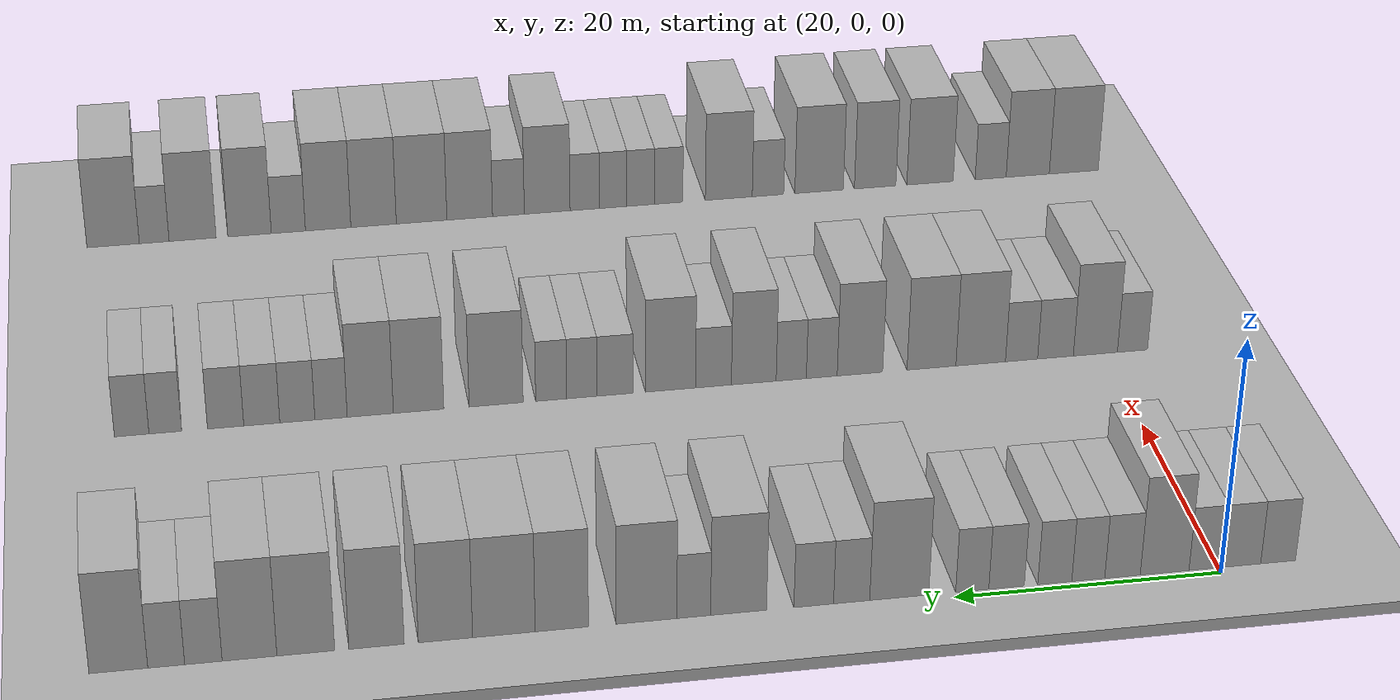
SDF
<sdf version="1.6">
 <world name="default">
  <include><name>ground_plane_1</name><uri>model://HANNAS_ground_plane</uri></include>
  <include>
   <name>ground_plane_2</name>
   <uri>model://HANNAS_ground_plane</uri>
   <pose>100 0 0  0 0 0</pose>
  </include>
  <model name="building_71">
   <static>1</static>
   <pose>25.0000 -4.2784 0 0.000000 0.000000 0.000000</pose>
   <link name="link">
    <pose>0 0 3.00 0 0 0</pose>
    <collision name="collision"><geometry><box><size>10.0000 2.6548 6.0000</size></box></geometry></collision>
    <visual name="visual">
     <cast_shadows>0</cast_shadows>
     <geometry><box><size>10.0000 2.6548 6.0000</size></box></geometry>
     <material>
      <script>
       <uri>model://HANNAS_wall/materials/scripts</uri>
       <uri>model://HANNAS_wall/materials/textures</uri>
       <name>vrc/HANNAS_wall</name>
      </script>
     </material>
    </visual>
   </link>
  </model>
  <model name="building_72">
   <static>1</static>
   <pose>25.0000 -1.5049 0 0.000000 0.000000 0.000000</pose>
   <link name="link">
    <pose>0 0 3.00 0 0 0</pose>
    <collision name="collision"><geometry><box><size>10.0000 2.8922 6.0000</size></box></geometry></collision>
    <visual name="visual">
     <cast_shadows>0</cast_shadows>
     <geometry><box><size>10.0000 2.8922 6.0000</size></box></geometry>
     <material>
      <script>
       <uri>model://HANNAS_wall/materials/scripts</uri>
       <uri>model://HANNAS_wall/materials/textures</uri>
       <name>vrc/HANNAS_wall</name>
      </script>
     </material>
    </visual>
   </link>
  </model>
  <model name="building_73">
   <static>1</static>
   <pose>25.0000 1.2152 0 0.000000 0.000000 0.000000</pose>
   <link name="link">
    <pose>0 0 3.00 0 0 0</pose>
    <collision name="collision"><geometry><box><size>10.0000 2.5478 6.0000</size></box></geometry></collision>
    <visual name="visual">
     <cast_shadows>0</cast_shadows>
     <geometry><box><size>10.0000 2.5478 6.0000</size></box></geometry>
     <material>
      <script>
       <uri>model://HANNAS_wall/materials/scripts</uri>
       <uri>model://HANNAS_wall/materials/textures</uri>
       <name>vrc/HANNAS_wall</name>
      </script>
     </material>
    </visual>
   </link>
  </model>
  <model name="building_74">
   <static>1</static>
   <pose>25.0000 4.3278 0 0.000000 0.000000 0.000000</pose>
   <link name="link">
    <pose>0 0 4.50 0 0 0</pose>
    <collision name="collision"><geometry><box><size>10.0000 3.6774 9.0000</size></box></geometry></collision>
    <visual name="visual">
     <cast_shadows>0</cast_shadows>
     <geometry><box><size>10.0000 3.6774 9.0000</size></box></geometry>
     <material>
      <script>
       <uri>model://HANNAS_wall/materials/scripts</uri>
       <uri>model://HANNAS_wall/materials/textures</uri>
       <name>vrc/HANNAS_wall</name>
      </script>
     </material>
    </visual>
   </link>
  </model>
  <model name="building_75">
   <static>1</static>
   <pose>25.0000 7.5017 0 0.000000 0.000000 0.000000</pose>
   <link name="link">
    <pose>0 0 3.00 0 0 0</pose>
    <collision name="collision"><geometry><box><size>10.0000 2.6704 6.0000</size></box></geometry></collision>
    <visual name="visual">
     <cast_shadows>0</cast_shadows>
     <geometry><box><size>10.0000 2.6704 6.0000</size></box></geometry>
     <material>
      <script>
       <uri>model://HANNAS_wall/materials/scripts</uri>
       <uri>model://HANNAS_wall/materials/textures</uri>
       <name>vrc/HANNAS_wall</name>
      </script>
     </material>
    </visual>
   </link>
  </model>
  <model name="building_76">
   <static>1</static>
   <pose>25.0000 10.0723 0 0.000000 0.000000 0.000000</pose>
   <link name="link">
    <pose>0 0 3.00 0 0 0</pose>
    <collision name="collision"><geometry><box><size>10.0000 2.4708 6.0000</size></box></geometry></collision>
    <visual name="visual">
     <cast_shadows>0</cast_shadows>
     <geometry><box><size>10.0000 2.4708 6.0000</size></box></geometry>
     <material>
      <script>
       <uri>model://HANNAS_wall/materials/scripts</uri>
       <uri>model://HANNAS_wall/materials/textures</uri>
       <name>vrc/HANNAS_wall</name>
      </script>
     </material>
    </visual>
   </link>
  </model>
  <model name="building_77">
   <static>1</static>
   <pose>25.0000 12.5815 0 0.000000 0.000000 0.000000</pose>
   <link name="link">
    <pose>0 0 3.00 0 0 0</pose>
    <collision name="collision"><geometry><box><size>10.0000 2.5476 6.0000</size></box></geometry></collision>
    <visual name="visual">
     <cast_shadows>0</cast_shadows>
     <geometry><box><size>10.0000 2.5476 6.0000</size></box></geometry>
     <material>
      <script>
       <uri>model://HANNAS_wall/materials/scripts</uri>
       <uri>model://HANNAS_wall/materials/textures</uri>
       <name>vrc/HANNAS_wall</name>
      </script>
     </material>
    </visual>
   </link>
  </model>
  <model name="building_78">
   <static>1</static>
   <pose>25.0000 16.1793 0 0.000000 0.000000 0.000000</pose>
   <link name="link">
    <pose>0 0 3.00 0 0 0</pose>
    <collision name="collision"><geometry><box><size>10.0000 2.6479 6.0000</size></box></geometry></collision>
    <visual name="visual">
     <cast_shadows>0</cast_shadows>
     <geometry><box><size>10.0000 2.6479 6.0000</size></box></geometry>
     <material>
      <script>
       <uri>model://HANNAS_wall/materials/scripts</uri>
       <uri>model://HANNAS_wall/materials/textures</uri>
       <name>vrc/HANNAS_wall</name>
      </script>
     </material>
    </visual>
   </link>
  </model>
  <model name="building_79">
   <static>1</static>
   <pose>25.0000 18.7318 0 0.000000 0.000000 0.000000</pose>
   <link name="link">
    <pose>0 0 3.00 0 0 0</pose>
    <collision name="collision"><geometry><box><size>10.0000 2.4572 6.0000</size></box></geometry></collision>
    <visual name="visual">
     <cast_shadows>0</cast_shadows>
     <geometry><box><size>10.0000 2.4572 6.0000</size></box></geometry>
     <material>
      <script>
       <uri>model://HANNAS_wall/materials/scripts</uri>
       <uri>model://HANNAS_wall/materials/textures</uri>
       <name>vrc/HANNAS_wall</name>
      </script>
     </material>
    </visual>
   </link>
  </model>
  <model name="building_80">
   <static>1</static>
   <pose>25.0000 24.1392 0 0.000000 0.000000 0.000000</pose>
   <link name="link">
    <pose>0 0 4.50 0 0 0</pose>
    <collision name="collision"><geometry><box><size>10.0000 4.3575 9.0000</size></box></geometry></collision>
    <visual name="visual">
     <cast_shadows>0</cast_shadows>
     <geometry><box><size>10.0000 4.3575 9.0000</size></box></geometry>
     <material>
      <script>
       <uri>model://HANNAS_wall/materials/scripts</uri>
       <uri>model://HANNAS_wall/materials/textures</uri>
       <name>vrc/HANNAS_wall</name>
      </script>
     </material>
    </visual>
   </link>
  </model>
  <model name="building_81">
   <static>1</static>
   <pose>25.0000 27.6455 0 0.000000 0.000000 0.000000</pose>
   <link name="link">
    <pose>0 0 3.00 0 0 0</pose>
    <collision name="collision"><geometry><box><size>10.0000 2.6552 6.0000</size></box></geometry></collision>
    <visual name="visual">
     <cast_shadows>0</cast_shadows>
     <geometry><box><size>10.0000 2.6552 6.0000</size></box></geometry>
     <material>
      <script>
       <uri>model://HANNAS_wall/materials/scripts</uri>
       <uri>model://HANNAS_wall/materials/textures</uri>
       <name>vrc/HANNAS_wall</name>
      </script>
     </material>
    </visual>
   </link>
  </model>
  <model name="building_82">
   <static>1</static>
   <pose>25.0000 30.4266 0 0.000000 0.000000 0.000000</pose>
   <link name="link">
    <pose>0 0 3.00 0 0 0</pose>
    <collision name="collision"><geometry><box><size>10.0000 2.9068 6.0000</size></box></geometry></collision>
    <visual name="visual">
     <cast_shadows>0</cast_shadows>
     <geometry><box><size>10.0000 2.9068 6.0000</size></box></geometry>
     <material>
      <script>
       <uri>model://HANNAS_wall/materials/scripts</uri>
       <uri>model://HANNAS_wall/materials/textures</uri>
       <name>vrc/HANNAS_wall</name>
      </script>
     </material>
    </visual>
   </link>
  </model>
  <model name="building_83">
   <static>1</static>
   <pose>25.0000 35.9176 0 0.000000 0.000000 0.000000</pose>
   <link name="link">
    <pose>0 0 4.50 0 0 0</pose>
    <collision name="collision"><geometry><box><size>10.0000 4.0753 9.0000</size></box></geometry></collision>
    <visual name="visual">
     <cast_shadows>0</cast_shadows>
     <geometry><box><size>10.0000 4.0753 9.0000</size></box></geometry>
     <material>
      <script>
       <uri>model://HANNAS_wall/materials/scripts</uri>
       <uri>model://HANNAS_wall/materials/textures</uri>
       <name>vrc/HANNAS_wall</name>
      </script>
     </material>
    </visual>
   </link>
  </model>
  <model name="building_84">
   <static>1</static>
   <pose>25.0000 39.1796 0 0.000000 0.000000 0.000000</pose>
   <link name="link">
    <pose>0 0 3.00 0 0 0</pose>
    <collision name="collision"><geometry><box><size>10.0000 2.4487 6.0000</size></box></geometry></collision>
    <visual name="visual">
     <cast_shadows>0</cast_shadows>
     <geometry><box><size>10.0000 2.4487 6.0000</size></box></geometry>
     <material>
      <script>
       <uri>model://HANNAS_wall/materials/scripts</uri>
       <uri>model://HANNAS_wall/materials/textures</uri>
       <name>vrc/HANNAS_wall</name>
      </script>
     </material>
    </visual>
   </link>
  </model>
  <model name="building_85">
   <static>1</static>
   <pose>25.0000 42.5928 0 0.000000 0.000000 0.000000</pose>
   <link name="link">
    <pose>0 0 4.50 0 0 0</pose>
    <collision name="collision"><geometry><box><size>10.0000 4.3776 9.0000</size></box></geometry></collision>
    <visual name="visual">
     <cast_shadows>0</cast_shadows>
     <geometry><box><size>10.0000 4.3776 9.0000</size></box></geometry>
     <material>
      <script>
       <uri>model://HANNAS_wall/materials/scripts</uri>
       <uri>model://HANNAS_wall/materials/textures</uri>
       <name>vrc/HANNAS_wall</name>
      </script>
     </material>
    </visual>
   </link>
  </model>
  <model name="building_86">
   <static>1</static>
   <pose>25.0000 48.6928 0 0.000000 0.000000 0.000000</pose>
   <link name="link">
    <pose>0 0 4.50 0 0 0</pose>
    <collision name="collision"><geometry><box><size>10.0000 3.8224 9.0000</size></box></geometry></collision>
    <visual name="visual">
     <cast_shadows>0</cast_shadows>
     <geometry><box><size>10.0000 3.8224 9.0000</size></box></geometry>
     <material>
      <script>
       <uri>model://HANNAS_wall/materials/scripts</uri>
       <uri>model://HANNAS_wall/materials/textures</uri>
       <name>vrc/HANNAS_wall</name>
      </script>
     </material>
    </visual>
   </link>
  </model>
  <model name="building_87">
   <static>1</static>
   <pose>25.0000 52.8372 0 0.000000 0.000000 0.000000</pose>
   <link name="link">
    <pose>0 0 4.50 0 0 0</pose>
    <collision name="collision"><geometry><box><size>10.0000 4.4663 9.0000</size></box></geometry></collision>
    <visual name="visual">
     <cast_shadows>0</cast_shadows>
     <geometry><box><size>10.0000 4.4663 9.0000</size></box></geometry>
     <material>
      <script>
       <uri>model://HANNAS_wall/materials/scripts</uri>
       <uri>model://HANNAS_wall/materials/textures</uri>
       <name>vrc/HANNAS_wall</name>
      </script>
     </material>
    </visual>
   </link>
  </model>
  <model name="building_88">
   <static>1</static>
   <pose>25.0000 57.0022 0 0.000000 0.000000 0.000000</pose>
   <link name="link">
    <pose>0 0 4.50 0 0 0</pose>
    <collision name="collision"><geometry><box><size>10.0000 3.8636 9.0000</size></box></geometry></collision>
    <visual name="visual">
     <cast_shadows>0</cast_shadows>
     <geometry><box><size>10.0000 3.8636 9.0000</size></box></geometry>
     <material>
      <script>
       <uri>model://HANNAS_wall/materials/scripts</uri>
       <uri>model://HANNAS_wall/materials/textures</uri>
       <name>vrc/HANNAS_wall</name>
      </script>
     </material>
    </visual>
   </link>
  </model>
  <model name="building_89">
   <static>1</static>
   <pose>25.0000 61.8881 0 0.000000 0.000000 0.000000</pose>
   <link name="link">
    <pose>0 0 4.50 0 0 0</pose>
    <collision name="collision"><geometry><box><size>10.0000 3.9083 9.0000</size></box></geometry></collision>
    <visual name="visual">
     <cast_shadows>0</cast_shadows>
     <geometry><box><size>10.0000 3.9083 9.0000</size></box></geometry>
     <material>
      <script>
       <uri>model://HANNAS_wall/materials/scripts</uri>
       <uri>model://HANNAS_wall/materials/textures</uri>
       <name>vrc/HANNAS_wall</name>
      </script>
     </material>
    </visual>
   </link>
  </model>
  <model name="building_90">
   <static>1</static>
   <pose>25.0000 66.8742 0 0.000000 0.000000 0.000000</pose>
   <link name="link">
    <pose>0 0 4.50 0 0 0</pose>
    <collision name="collision"><geometry><box><size>10.0000 4.0639 9.0000</size></box></geometry></collision>
    <visual name="visual">
     <cast_shadows>0</cast_shadows>
     <geometry><box><size>10.0000 4.0639 9.0000</size></box></geometry>
     <material>
      <script>
       <uri>model://HANNAS_wall/materials/scripts</uri>
       <uri>model://HANNAS_wall/materials/textures</uri>
       <name>vrc/HANNAS_wall</name>
      </script>
     </material>
    </visual>
   </link>
  </model>
  <model name="building_91">
   <static>1</static>
   <pose>25.0000 70.8223 0 0.000000 0.000000 0.000000</pose>
   <link name="link">
    <pose>0 0 4.50 0 0 0</pose>
    <collision name="collision"><geometry><box><size>10.0000 3.8323 9.0000</size></box></geometry></collision>
    <visual name="visual">
     <cast_shadows>0</cast_shadows>
     <geometry><box><size>10.0000 3.8323 9.0000</size></box></geometry>
     <material>
      <script>
       <uri>model://HANNAS_wall/materials/scripts</uri>
       <uri>model://HANNAS_wall/materials/textures</uri>
       <name>vrc/HANNAS_wall</name>
      </script>
     </material>
    </visual>
   </link>
  </model>
  <model name="building_92">
   <static>1</static>
   <pose>25.0000 74.0421 0 0.000000 0.000000 0.000000</pose>
   <link name="link">
    <pose>0 0 3.00 0 0 0</pose>
    <collision name="collision"><geometry><box><size>10.0000 2.6072 6.0000</size></box></geometry></collision>
    <visual name="visual">
     <cast_shadows>0</cast_shadows>
     <geometry><box><size>10.0000 2.6072 6.0000</size></box></geometry>
     <material>
      <script>
       <uri>model://HANNAS_wall/materials/scripts</uri>
       <uri>model://HANNAS_wall/materials/textures</uri>
       <name>vrc/HANNAS_wall</name>
      </script>
     </material>
    </visual>
   </link>
  </model>
  <model name="building_93">
   <static>1</static>
   <pose>25.0000 76.6273 0 0.000000 0.000000 0.000000</pose>
   <link name="link">
    <pose>0 0 3.00 0 0 0</pose>
    <collision name="collision"><geometry><box><size>10.0000 2.5631 6.0000</size></box></geometry></collision>
    <visual name="visual">
     <cast_shadows>0</cast_shadows>
     <geometry><box><size>10.0000 2.5631 6.0000</size></box></geometry>
     <material>
      <script>
       <uri>model://HANNAS_wall/materials/scripts</uri>
       <uri>model://HANNAS_wall/materials/textures</uri>
       <name>vrc/HANNAS_wall</name>
      </script>
     </material>
    </visual>
   </link>
  </model>
  <model name="building_94">
   <static>1</static>
   <pose>25.0000 79.9446 0 0.000000 0.000000 0.000000</pose>
   <link name="link">
    <pose>0 0 4.50 0 0 0</pose>
    <collision name="collision"><geometry><box><size>10.0000 4.0716 9.0000</size></box></geometry></collision>
    <visual name="visual">
     <cast_shadows>0</cast_shadows>
     <geometry><box><size>10.0000 4.0716 9.0000</size></box></geometry>
     <material>
      <script>
       <uri>model://HANNAS_wall/materials/scripts</uri>
       <uri>model://HANNAS_wall/materials/textures</uri>
       <name>vrc/HANNAS_wall</name>
      </script>
     </material>
    </visual>
   </link>
  </model>
  <model name="building_217">
   <static>1</static>
   <pose>55.0000 -2.0683 0 0.000000 0.000000 0.000000</pose>
   <link name="link">
    <pose>0 0 3.00 0 0 0</pose>
    <collision name="collision"><geometry><box><size>10.0000 2.5191 6.0000</size></box></geometry></collision>
    <visual name="visual">
     <cast_shadows>0</cast_shadows>
     <geometry><box><size>10.0000 2.5191 6.0000</size></box></geometry>
     <material>
      <script>
       <uri>model://HANNAS_wall/materials/scripts</uri>
       <uri>model://HANNAS_wall/materials/textures</uri>
       <name>vrc/HANNAS_wall</name>
      </script>
     </material>
    </visual>
   </link>
  </model>
  <model name="building_218">
   <static>1</static>
   <pose>55.0000 1.0301 0 0.000000 0.000000 0.000000</pose>
   <link name="link">
    <pose>0 0 4.50 0 0 0</pose>
    <collision name="collision"><geometry><box><size>10.0000 3.6776 9.0000</size></box></geometry></collision>
    <visual name="visual">
     <cast_shadows>0</cast_shadows>
     <geometry><box><size>10.0000 3.6776 9.0000</size></box></geometry>
     <material>
      <script>
       <uri>model://HANNAS_wall/materials/scripts</uri>
       <uri>model://HANNAS_wall/materials/textures</uri>
       <name>vrc/HANNAS_wall</name>
      </script>
     </material>
    </visual>
   </link>
  </model>
  <model name="building_219">
   <static>1</static>
   <pose>55.0000 4.3570 0 0.000000 0.000000 0.000000</pose>
   <link name="link">
    <pose>0 0 3.00 0 0 0</pose>
    <collision name="collision"><geometry><box><size>10.0000 2.9763 6.0000</size></box></geometry></collision>
    <visual name="visual">
     <cast_shadows>0</cast_shadows>
     <geometry><box><size>10.0000 2.9763 6.0000</size></box></geometry>
     <material>
      <script>
       <uri>model://HANNAS_wall/materials/scripts</uri>
       <uri>model://HANNAS_wall/materials/textures</uri>
       <name>vrc/HANNAS_wall</name>
      </script>
     </material>
    </visual>
   </link>
  </model>
  <model name="building_220">
   <static>1</static>
   <pose>55.0000 7.1787 0 0.000000 0.000000 0.000000</pose>
   <link name="link">
    <pose>0 0 3.00 0 0 0</pose>
    <collision name="collision"><geometry><box><size>10.0000 2.6672 6.0000</size></box></geometry></collision>
    <visual name="visual">
     <cast_shadows>0</cast_shadows>
     <geometry><box><size>10.0000 2.6672 6.0000</size></box></geometry>
     <material>
      <script>
       <uri>model://HANNAS_wall/materials/scripts</uri>
       <uri>model://HANNAS_wall/materials/textures</uri>
       <name>vrc/HANNAS_wall</name>
      </script>
     </material>
    </visual>
   </link>
  </model>
  <model name="building_221">
   <static>1</static>
   <pose>55.0000 10.5613 0 0.000000 0.000000 0.000000</pose>
   <link name="link">
    <pose>0 0 4.50 0 0 0</pose>
    <collision name="collision"><geometry><box><size>10.0000 4.0979 9.0000</size></box></geometry></collision>
    <visual name="visual">
     <cast_shadows>0</cast_shadows>
     <geometry><box><size>10.0000 4.0979 9.0000</size></box></geometry>
     <material>
      <script>
       <uri>model://HANNAS_wall/materials/scripts</uri>
       <uri>model://HANNAS_wall/materials/textures</uri>
       <name>vrc/HANNAS_wall</name>
      </script>
     </material>
    </visual>
   </link>
  </model>
  <model name="building_222">
   <static>1</static>
   <pose>55.0000 14.6250 0 0.000000 0.000000 0.000000</pose>
   <link name="link">
    <pose>0 0 4.50 0 0 0</pose>
    <collision name="collision"><geometry><box><size>10.0000 4.0296 9.0000</size></box></geometry></collision>
    <visual name="visual">
     <cast_shadows>0</cast_shadows>
     <geometry><box><size>10.0000 4.0296 9.0000</size></box></geometry>
     <material>
      <script>
       <uri>model://HANNAS_wall/materials/scripts</uri>
       <uri>model://HANNAS_wall/materials/textures</uri>
       <name>vrc/HANNAS_wall</name>
      </script>
     </material>
    </visual>
   </link>
  </model>
  <model name="building_223">
   <static>1</static>
   <pose>55.0000 20.5006 0 0.000000 0.000000 0.000000</pose>
   <link name="link">
    <pose>0 0 4.50 0 0 0</pose>
    <collision name="collision"><geometry><box><size>10.0000 3.7215 9.0000</size></box></geometry></collision>
    <visual name="visual">
     <cast_shadows>0</cast_shadows>
     <geometry><box><size>10.0000 3.7215 9.0000</size></box></geometry>
     <material>
      <script>
       <uri>model://HANNAS_wall/materials/scripts</uri>
       <uri>model://HANNAS_wall/materials/textures</uri>
       <name>vrc/HANNAS_wall</name>
      </script>
     </material>
    </visual>
   </link>
  </model>
  <model name="building_224">
   <static>1</static>
   <pose>55.0000 23.6199 0 0.000000 0.000000 0.000000</pose>
   <link name="link">
    <pose>0 0 3.00 0 0 0</pose>
    <collision name="collision"><geometry><box><size>10.0000 2.5172 6.0000</size></box></geometry></collision>
    <visual name="visual">
     <cast_shadows>0</cast_shadows>
     <geometry><box><size>10.0000 2.5172 6.0000</size></box></geometry>
     <material>
      <script>
       <uri>model://HANNAS_wall/materials/scripts</uri>
       <uri>model://HANNAS_wall/materials/textures</uri>
       <name>vrc/HANNAS_wall</name>
      </script>
     </material>
    </visual>
   </link>
  </model>
  <model name="building_225">
   <static>1</static>
   <pose>55.0000 26.1059 0 0.000000 0.000000 0.000000</pose>
   <link name="link">
    <pose>0 0 3.00 0 0 0</pose>
    <collision name="collision"><geometry><box><size>10.0000 2.4548 6.0000</size></box></geometry></collision>
    <visual name="visual">
     <cast_shadows>0</cast_shadows>
     <geometry><box><size>10.0000 2.4548 6.0000</size></box></geometry>
     <material>
      <script>
       <uri>model://HANNAS_wall/materials/scripts</uri>
       <uri>model://HANNAS_wall/materials/textures</uri>
       <name>vrc/HANNAS_wall</name>
      </script>
     </material>
    </visual>
   </link>
  </model>
  <model name="building_226">
   <static>1</static>
   <pose>55.0000 29.1507 0 0.000000 0.000000 0.000000</pose>
   <link name="link">
    <pose>0 0 4.50 0 0 0</pose>
    <collision name="collision"><geometry><box><size>10.0000 3.6347 9.0000</size></box></geometry></collision>
    <visual name="visual">
     <cast_shadows>0</cast_shadows>
     <geometry><box><size>10.0000 3.6347 9.0000</size></box></geometry>
     <material>
      <script>
       <uri>model://HANNAS_wall/materials/scripts</uri>
       <uri>model://HANNAS_wall/materials/textures</uri>
       <name>vrc/HANNAS_wall</name>
      </script>
     </material>
    </visual>
   </link>
  </model>
  <model name="building_227">
   <static>1</static>
   <pose>55.0000 32.4168 0 0.000000 0.000000 0.000000</pose>
   <link name="link">
    <pose>0 0 3.00 0 0 0</pose>
    <collision name="collision"><geometry><box><size>10.0000 2.8976 6.0000</size></box></geometry></collision>
    <visual name="visual">
     <cast_shadows>0</cast_shadows>
     <geometry><box><size>10.0000 2.8976 6.0000</size></box></geometry>
     <material>
      <script>
       <uri>model://HANNAS_wall/materials/scripts</uri>
       <uri>model://HANNAS_wall/materials/textures</uri>
       <name>vrc/HANNAS_wall</name>
      </script>
     </material>
    </visual>
   </link>
  </model>
  <model name="building_228">
   <static>1</static>
   <pose>55.0000 35.8851 0 0.000000 0.000000 0.000000</pose>
   <link name="link">
    <pose>0 0 4.50 0 0 0</pose>
    <collision name="collision"><geometry><box><size>10.0000 4.0390 9.0000</size></box></geometry></collision>
    <visual name="visual">
     <cast_shadows>0</cast_shadows>
     <geometry><box><size>10.0000 4.0390 9.0000</size></box></geometry>
     <material>
      <script>
       <uri>model://HANNAS_wall/materials/scripts</uri>
       <uri>model://HANNAS_wall/materials/textures</uri>
       <name>vrc/HANNAS_wall</name>
      </script>
     </material>
    </visual>
   </link>
  </model>
  <model name="building_229">
   <static>1</static>
   <pose>55.0000 40.3475 0 0.000000 0.000000 0.000000</pose>
   <link name="link">
    <pose>0 0 3.00 0 0 0</pose>
    <collision name="collision"><geometry><box><size>10.0000 2.8857 6.0000</size></box></geometry></collision>
    <visual name="visual">
     <cast_shadows>0</cast_shadows>
     <geometry><box><size>10.0000 2.8857 6.0000</size></box></geometry>
     <material>
      <script>
       <uri>model://HANNAS_wall/materials/scripts</uri>
       <uri>model://HANNAS_wall/materials/textures</uri>
       <name>vrc/HANNAS_wall</name>
      </script>
     </material>
    </visual>
   </link>
  </model>
  <model name="building_230">
   <static>1</static>
   <pose>55.0000 43.0012 0 0.000000 0.000000 0.000000</pose>
   <link name="link">
    <pose>0 0 3.00 0 0 0</pose>
    <collision name="collision"><geometry><box><size>10.0000 2.4218 6.0000</size></box></geometry></collision>
    <visual name="visual">
     <cast_shadows>0</cast_shadows>
     <geometry><box><size>10.0000 2.4218 6.0000</size></box></geometry>
     <material>
      <script>
       <uri>model://HANNAS_wall/materials/scripts</uri>
       <uri>model://HANNAS_wall/materials/textures</uri>
       <name>vrc/HANNAS_wall</name>
      </script>
     </material>
    </visual>
   </link>
  </model>
  <model name="building_231">
   <static>1</static>
   <pose>55.0000 45.4485 0 0.000000 0.000000 0.000000</pose>
   <link name="link">
    <pose>0 0 3.00 0 0 0</pose>
    <collision name="collision"><geometry><box><size>10.0000 2.4726 6.0000</size></box></geometry></collision>
    <visual name="visual">
     <cast_shadows>0</cast_shadows>
     <geometry><box><size>10.0000 2.4726 6.0000</size></box></geometry>
     <material>
      <script>
       <uri>model://HANNAS_wall/materials/scripts</uri>
       <uri>model://HANNAS_wall/materials/textures</uri>
       <name>vrc/HANNAS_wall</name>
      </script>
     </material>
    </visual>
   </link>
  </model>
  <model name="building_232">
   <static>1</static>
   <pose>55.0000 49.8302 0 0.000000 0.000000 0.000000</pose>
   <link name="link">
    <pose>0 0 4.50 0 0 0</pose>
    <collision name="collision"><geometry><box><size>10.0000 4.2908 9.0000</size></box></geometry></collision>
    <visual name="visual">
     <cast_shadows>0</cast_shadows>
     <geometry><box><size>10.0000 4.2908 9.0000</size></box></geometry>
     <material>
      <script>
       <uri>model://HANNAS_wall/materials/scripts</uri>
       <uri>model://HANNAS_wall/materials/textures</uri>
       <name>vrc/HANNAS_wall</name>
      </script>
     </material>
    </visual>
   </link>
  </model>
  <model name="building_233">
   <static>1</static>
   <pose>55.0000 55.9651 0 0.000000 0.000000 0.000000</pose>
   <link name="link">
    <pose>0 0 4.50 0 0 0</pose>
    <collision name="collision"><geometry><box><size>10.0000 3.9792 9.0000</size></box></geometry></collision>
    <visual name="visual">
     <cast_shadows>0</cast_shadows>
     <geometry><box><size>10.0000 3.9792 9.0000</size></box></geometry>
     <material>
      <script>
       <uri>model://HANNAS_wall/materials/scripts</uri>
       <uri>model://HANNAS_wall/materials/textures</uri>
       <name>vrc/HANNAS_wall</name>
      </script>
     </material>
    </visual>
   </link>
  </model>
  <model name="building_234">
   <static>1</static>
   <pose>55.0000 59.7705 0 0.000000 0.000000 0.000000</pose>
   <link name="link">
    <pose>0 0 4.50 0 0 0</pose>
    <collision name="collision"><geometry><box><size>10.0000 3.6314 9.0000</size></box></geometry></collision>
    <visual name="visual">
     <cast_shadows>0</cast_shadows>
     <geometry><box><size>10.0000 3.6314 9.0000</size></box></geometry>
     <material>
      <script>
       <uri>model://HANNAS_wall/materials/scripts</uri>
       <uri>model://HANNAS_wall/materials/textures</uri>
       <name>vrc/HANNAS_wall</name>
      </script>
     </material>
    </visual>
   </link>
  </model>
  <model name="building_235">
   <static>1</static>
   <pose>55.0000 62.8514 0 0.000000 0.000000 0.000000</pose>
   <link name="link">
    <pose>0 0 3.00 0 0 0</pose>
    <collision name="collision"><geometry><box><size>10.0000 2.5305 6.0000</size></box></geometry></collision>
    <visual name="visual">
     <cast_shadows>0</cast_shadows>
     <geometry><box><size>10.0000 2.5305 6.0000</size></box></geometry>
     <material>
      <script>
       <uri>model://HANNAS_wall/materials/scripts</uri>
       <uri>model://HANNAS_wall/materials/textures</uri>
       <name>vrc/HANNAS_wall</name>
      </script>
     </material>
    </visual>
   </link>
  </model>
  <model name="building_236">
   <static>1</static>
   <pose>55.0000 65.4903 0 0.000000 0.000000 0.000000</pose>
   <link name="link">
    <pose>0 0 3.00 0 0 0</pose>
    <collision name="collision"><geometry><box><size>10.0000 2.7474 6.0000</size></box></geometry></collision>
    <visual name="visual">
     <cast_shadows>0</cast_shadows>
     <geometry><box><size>10.0000 2.7474 6.0000</size></box></geometry>
     <material>
      <script>
       <uri>model://HANNAS_wall/materials/scripts</uri>
       <uri>model://HANNAS_wall/materials/textures</uri>
       <name>vrc/HANNAS_wall</name>
      </script>
     </material>
    </visual>
   </link>
  </model>
  <model name="building_237">
   <static>1</static>
   <pose>55.0000 68.2674 0 0.000000 0.000000 0.000000</pose>
   <link name="link">
    <pose>0 0 3.00 0 0 0</pose>
    <collision name="collision"><geometry><box><size>10.0000 2.8067 6.0000</size></box></geometry></collision>
    <visual name="visual">
     <cast_shadows>0</cast_shadows>
     <geometry><box><size>10.0000 2.8067 6.0000</size></box></geometry>
     <material>
      <script>
       <uri>model://HANNAS_wall/materials/scripts</uri>
       <uri>model://HANNAS_wall/materials/textures</uri>
       <name>vrc/HANNAS_wall</name>
      </script>
     </material>
    </visual>
   </link>
  </model>
  <model name="building_238">
   <static>1</static>
   <pose>55.0000 71.0810 0 0.000000 0.000000 0.000000</pose>
   <link name="link">
    <pose>0 0 3.00 0 0 0</pose>
    <collision name="collision"><geometry><box><size>10.0000 2.8206 6.0000</size></box></geometry></collision>
    <visual name="visual">
     <cast_shadows>0</cast_shadows>
     <geometry><box><size>10.0000 2.8206 6.0000</size></box></geometry>
     <material>
      <script>
       <uri>model://HANNAS_wall/materials/scripts</uri>
       <uri>model://HANNAS_wall/materials/textures</uri>
       <name>vrc/HANNAS_wall</name>
      </script>
     </material>
    </visual>
   </link>
  </model>
  <model name="building_239">
   <static>1</static>
   <pose>55.0000 75.7540 0 0.000000 0.000000 0.000000</pose>
   <link name="link">
    <pose>0 0 3.00 0 0 0</pose>
    <collision name="collision"><geometry><box><size>10.0000 2.5253 6.0000</size></box></geometry></collision>
    <visual name="visual">
     <cast_shadows>0</cast_shadows>
     <geometry><box><size>10.0000 2.5253 6.0000</size></box></geometry>
     <material>
      <script>
       <uri>model://HANNAS_wall/materials/scripts</uri>
       <uri>model://HANNAS_wall/materials/textures</uri>
       <name>vrc/HANNAS_wall</name>
      </script>
     </material>
    </visual>
   </link>
  </model>
  <model name="building_240">
   <static>1</static>
   <pose>55.0000 78.3491 0 0.000000 0.000000 0.000000</pose>
   <link name="link">
    <pose>0 0 3.00 0 0 0</pose>
    <collision name="collision"><geometry><box><size>10.0000 2.6649 6.0000</size></box></geometry></collision>
    <visual name="visual">
     <cast_shadows>0</cast_shadows>
     <geometry><box><size>10.0000 2.6649 6.0000</size></box></geometry>
     <material>
      <script>
       <uri>model://HANNAS_wall/materials/scripts</uri>
       <uri>model://HANNAS_wall/materials/textures</uri>
       <name>vrc/HANNAS_wall</name>
      </script>
     </material>
    </visual>
   </link>
  </model>
  <model name="building_361">
   <static>1</static>
   <pose>85.0000 -5.4838 0 0.000000 0.000000 0.000000</pose>
   <link name="link">
    <pose>0 0 4.50 0 0 0</pose>
    <collision name="collision"><geometry><box><size>10.0000 4.4878 9.0000</size></box></geometry></collision>
    <visual name="visual">
     <cast_shadows>0</cast_shadows>
     <geometry><box><size>10.0000 4.4878 9.0000</size></box></geometry>
     <material>
      <script>
       <uri>model://HANNAS_wall/materials/scripts</uri>
       <uri>model://HANNAS_wall/materials/textures</uri>
       <name>vrc/HANNAS_wall</name>
      </script>
     </material>
    </visual>
   </link>
  </model>
  <model name="building_362">
   <static>1</static>
   <pose>85.0000 -1.2689 0 0.000000 0.000000 0.000000</pose>
   <link name="link">
    <pose>0 0 4.50 0 0 0</pose>
    <collision name="collision"><geometry><box><size>10.0000 3.9420 9.0000</size></box></geometry></collision>
    <visual name="visual">
     <cast_shadows>0</cast_shadows>
     <geometry><box><size>10.0000 3.9420 9.0000</size></box></geometry>
     <material>
      <script>
       <uri>model://HANNAS_wall/materials/scripts</uri>
       <uri>model://HANNAS_wall/materials/textures</uri>
       <name>vrc/HANNAS_wall</name>
      </script>
     </material>
    </visual>
   </link>
  </model>
  <model name="building_363">
   <static>1</static>
   <pose>85.0000 2.1153 0 0.000000 0.000000 0.000000</pose>
   <link name="link">
    <pose>0 0 3.00 0 0 0</pose>
    <collision name="collision"><geometry><box><size>10.0000 2.8264 6.0000</size></box></geometry></collision>
    <visual name="visual">
     <cast_shadows>0</cast_shadows>
     <geometry><box><size>10.0000 2.8264 6.0000</size></box></geometry>
     <material>
      <script>
       <uri>model://HANNAS_wall/materials/scripts</uri>
       <uri>model://HANNAS_wall/materials/textures</uri>
       <name>vrc/HANNAS_wall</name>
      </script>
     </material>
    </visual>
   </link>
  </model>
  <model name="building_364">
   <static>1</static>
   <pose>85.0000 7.6293 0 0.000000 0.000000 0.000000</pose>
   <link name="link">
    <pose>0 0 4.50 0 0 0</pose>
    <collision name="collision"><geometry><box><size>10.0000 4.2015 9.0000</size></box></geometry></collision>
    <visual name="visual">
     <cast_shadows>0</cast_shadows>
     <geometry><box><size>10.0000 4.2015 9.0000</size></box></geometry>
     <material>
      <script>
       <uri>model://HANNAS_wall/materials/scripts</uri>
       <uri>model://HANNAS_wall/materials/textures</uri>
       <name>vrc/HANNAS_wall</name>
      </script>
     </material>
    </visual>
   </link>
  </model>
  <model name="building_365">
   <static>1</static>
   <pose>85.0000 12.5966 0 0.000000 0.000000 0.000000</pose>
   <link name="link">
    <pose>0 0 4.50 0 0 0</pose>
    <collision name="collision"><geometry><box><size>10.0000 3.7330 9.0000</size></box></geometry></collision>
    <visual name="visual">
     <cast_shadows>0</cast_shadows>
     <geometry><box><size>10.0000 3.7330 9.0000</size></box></geometry>
     <material>
      <script>
       <uri>model://HANNAS_wall/materials/scripts</uri>
       <uri>model://HANNAS_wall/materials/textures</uri>
       <name>vrc/HANNAS_wall</name>
      </script>
     </material>
    </visual>
   </link>
  </model>
  <model name="building_366">
   <static>1</static>
   <pose>85.0000 17.6400 0 0.000000 0.000000 0.000000</pose>
   <link name="link">
    <pose>0 0 4.50 0 0 0</pose>
    <collision name="collision"><geometry><box><size>10.0000 4.3537 9.0000</size></box></geometry></collision>
    <visual name="visual">
     <cast_shadows>0</cast_shadows>
     <geometry><box><size>10.0000 4.3537 9.0000</size></box></geometry>
     <material>
      <script>
       <uri>model://HANNAS_wall/materials/scripts</uri>
       <uri>model://HANNAS_wall/materials/textures</uri>
       <name>vrc/HANNAS_wall</name>
      </script>
     </material>
    </visual>
   </link>
  </model>
  <model name="building_367">
   <static>1</static>
   <pose>85.0000 22.2222 0 0.000000 0.000000 0.000000</pose>
   <link name="link">
    <pose>0 0 3.00 0 0 0</pose>
    <collision name="collision"><geometry><box><size>10.0000 2.8108 6.0000</size></box></geometry></collision>
    <visual name="visual">
     <cast_shadows>0</cast_shadows>
     <geometry><box><size>10.0000 2.8108 6.0000</size></box></geometry>
     <material>
      <script>
       <uri>model://HANNAS_wall/materials/scripts</uri>
       <uri>model://HANNAS_wall/materials/textures</uri>
       <name>vrc/HANNAS_wall</name>
      </script>
     </material>
    </visual>
   </link>
  </model>
  <model name="building_368">
   <static>1</static>
   <pose>85.0000 25.7215 0 0.000000 0.000000 0.000000</pose>
   <link name="link">
    <pose>0 0 4.50 0 0 0</pose>
    <collision name="collision"><geometry><box><size>10.0000 4.1877 9.0000</size></box></geometry></collision>
    <visual name="visual">
     <cast_shadows>0</cast_shadows>
     <geometry><box><size>10.0000 4.1877 9.0000</size></box></geometry>
     <material>
      <script>
       <uri>model://HANNAS_wall/materials/scripts</uri>
       <uri>model://HANNAS_wall/materials/textures</uri>
       <name>vrc/HANNAS_wall</name>
      </script>
     </material>
    </visual>
   </link>
  </model>
  <model name="building_369">
   <static>1</static>
   <pose>85.0000 31.0735 0 0.000000 0.000000 0.000000</pose>
   <link name="link">
    <pose>0 0 3.00 0 0 0</pose>
    <collision name="collision"><geometry><box><size>10.0000 2.5163 6.0000</size></box></geometry></collision>
    <visual name="visual">
     <cast_shadows>0</cast_shadows>
     <geometry><box><size>10.0000 2.5163 6.0000</size></box></geometry>
     <material>
      <script>
       <uri>model://HANNAS_wall/materials/scripts</uri>
       <uri>model://HANNAS_wall/materials/textures</uri>
       <name>vrc/HANNAS_wall</name>
      </script>
     </material>
    </visual>
   </link>
  </model>
  <model name="building_370">
   <static>1</static>
   <pose>85.0000 33.5482 0 0.000000 0.000000 0.000000</pose>
   <link name="link">
    <pose>0 0 3.00 0 0 0</pose>
    <collision name="collision"><geometry><box><size>10.0000 2.4329 6.0000</size></box></geometry></collision>
    <visual name="visual">
     <cast_shadows>0</cast_shadows>
     <geometry><box><size>10.0000 2.4329 6.0000</size></box></geometry>
     <material>
      <script>
       <uri>model://HANNAS_wall/materials/scripts</uri>
       <uri>model://HANNAS_wall/materials/textures</uri>
       <name>vrc/HANNAS_wall</name>
      </script>
     </material>
    </visual>
   </link>
  </model>
  <model name="building_371">
   <static>1</static>
   <pose>85.0000 35.9771 0 0.000000 0.000000 0.000000</pose>
   <link name="link">
    <pose>0 0 3.00 0 0 0</pose>
    <collision name="collision"><geometry><box><size>10.0000 2.4249 6.0000</size></box></geometry></collision>
    <visual name="visual">
     <cast_shadows>0</cast_shadows>
     <geometry><box><size>10.0000 2.4249 6.0000</size></box></geometry>
     <material>
      <script>
       <uri>model://HANNAS_wall/materials/scripts</uri>
       <uri>model://HANNAS_wall/materials/textures</uri>
       <name>vrc/HANNAS_wall</name>
      </script>
     </material>
    </visual>
   </link>
  </model>
  <model name="building_372">
   <static>1</static>
   <pose>85.0000 38.4851 0 0.000000 0.000000 0.000000</pose>
   <link name="link">
    <pose>0 0 3.00 0 0 0</pose>
    <collision name="collision"><geometry><box><size>10.0000 2.5913 6.0000</size></box></geometry></collision>
    <visual name="visual">
     <cast_shadows>0</cast_shadows>
     <geometry><box><size>10.0000 2.5913 6.0000</size></box></geometry>
     <material>
      <script>
       <uri>model://HANNAS_wall/materials/scripts</uri>
       <uri>model://HANNAS_wall/materials/textures</uri>
       <name>vrc/HANNAS_wall</name>
      </script>
     </material>
    </visual>
   </link>
  </model>
  <model name="building_373">
   <static>1</static>
   <pose>85.0000 41.7894 0 0.000000 0.000000 0.000000</pose>
   <link name="link">
    <pose>0 0 4.50 0 0 0</pose>
    <collision name="collision"><geometry><box><size>10.0000 4.0172 9.0000</size></box></geometry></collision>
    <visual name="visual">
     <cast_shadows>0</cast_shadows>
     <geometry><box><size>10.0000 4.0172 9.0000</size></box></geometry>
     <material>
      <script>
       <uri>model://HANNAS_wall/materials/scripts</uri>
       <uri>model://HANNAS_wall/materials/textures</uri>
       <name>vrc/HANNAS_wall</name>
      </script>
     </material>
    </visual>
   </link>
  </model>
  <model name="building_374">
   <static>1</static>
   <pose>85.0000 45.1890 0 0.000000 0.000000 0.000000</pose>
   <link name="link">
    <pose>0 0 3.00 0 0 0</pose>
    <collision name="collision"><geometry><box><size>10.0000 2.7820 6.0000</size></box></geometry></collision>
    <visual name="visual">
     <cast_shadows>0</cast_shadows>
     <geometry><box><size>10.0000 2.7820 6.0000</size></box></geometry>
     <material>
      <script>
       <uri>model://HANNAS_wall/materials/scripts</uri>
       <uri>model://HANNAS_wall/materials/textures</uri>
       <name>vrc/HANNAS_wall</name>
      </script>
     </material>
    </visual>
   </link>
  </model>
  <model name="building_375">
   <static>1</static>
   <pose>85.0000 48.5714 0 0.000000 0.000000 0.000000</pose>
   <link name="link">
    <pose>0 0 4.50 0 0 0</pose>
    <collision name="collision"><geometry><box><size>10.0000 3.9829 9.0000</size></box></geometry></collision>
    <visual name="visual">
     <cast_shadows>0</cast_shadows>
     <geometry><box><size>10.0000 3.9829 9.0000</size></box></geometry>
     <material>
      <script>
       <uri>model://HANNAS_wall/materials/scripts</uri>
       <uri>model://HANNAS_wall/materials/textures</uri>
       <name>vrc/HANNAS_wall</name>
      </script>
     </material>
    </visual>
   </link>
  </model>
  <model name="building_376">
   <static>1</static>
   <pose>85.0000 52.7615 0 0.000000 0.000000 0.000000</pose>
   <link name="link">
    <pose>0 0 4.50 0 0 0</pose>
    <collision name="collision"><geometry><box><size>10.0000 4.3973 9.0000</size></box></geometry></collision>
    <visual name="visual">
     <cast_shadows>0</cast_shadows>
     <geometry><box><size>10.0000 4.3973 9.0000</size></box></geometry>
     <material>
      <script>
       <uri>model://HANNAS_wall/materials/scripts</uri>
       <uri>model://HANNAS_wall/materials/textures</uri>
       <name>vrc/HANNAS_wall</name>
      </script>
     </material>
    </visual>
   </link>
  </model>
  <model name="building_377">
   <static>1</static>
   <pose>85.0000 56.9300 0 0.000000 0.000000 0.000000</pose>
   <link name="link">
    <pose>0 0 4.50 0 0 0</pose>
    <collision name="collision"><geometry><box><size>10.0000 3.9397 9.0000</size></box></geometry></collision>
    <visual name="visual">
     <cast_shadows>0</cast_shadows>
     <geometry><box><size>10.0000 3.9397 9.0000</size></box></geometry>
     <material>
      <script>
       <uri>model://HANNAS_wall/materials/scripts</uri>
       <uri>model://HANNAS_wall/materials/textures</uri>
       <name>vrc/HANNAS_wall</name>
      </script>
     </material>
    </visual>
   </link>
  </model>
  <model name="building_378">
   <static>1</static>
   <pose>85.0000 60.8587 0 0.000000 0.000000 0.000000</pose>
   <link name="link">
    <pose>0 0 4.50 0 0 0</pose>
    <collision name="collision"><geometry><box><size>10.0000 3.9179 9.0000</size></box></geometry></collision>
    <visual name="visual">
     <cast_shadows>0</cast_shadows>
     <geometry><box><size>10.0000 3.9179 9.0000</size></box></geometry>
     <material>
      <script>
       <uri>model://HANNAS_wall/materials/scripts</uri>
       <uri>model://HANNAS_wall/materials/textures</uri>
       <name>vrc/HANNAS_wall</name>
      </script>
     </material>
    </visual>
   </link>
  </model>
  <model name="building_379">
   <static>1</static>
   <pose>85.0000 64.2847 0 0.000000 0.000000 0.000000</pose>
   <link name="link">
    <pose>0 0 3.00 0 0 0</pose>
    <collision name="collision"><geometry><box><size>10.0000 2.9339 6.0000</size></box></geometry></collision>
    <visual name="visual">
     <cast_shadows>0</cast_shadows>
     <geometry><box><size>10.0000 2.9339 6.0000</size></box></geometry>
     <material>
      <script>
       <uri>model://HANNAS_wall/materials/scripts</uri>
       <uri>model://HANNAS_wall/materials/textures</uri>
       <name>vrc/HANNAS_wall</name>
      </script>
     </material>
    </visual>
   </link>
  </model>
  <model name="building_380">
   <static>1</static>
   <pose>85.0000 67.6168 0 0.000000 0.000000 0.000000</pose>
   <link name="link">
    <pose>0 0 4.50 0 0 0</pose>
    <collision name="collision"><geometry><box><size>10.0000 3.7304 9.0000</size></box></geometry></collision>
    <visual name="visual">
     <cast_shadows>0</cast_shadows>
     <geometry><box><size>10.0000 3.7304 9.0000</size></box></geometry>
     <material>
      <script>
       <uri>model://HANNAS_wall/materials/scripts</uri>
       <uri>model://HANNAS_wall/materials/textures</uri>
       <name>vrc/HANNAS_wall</name>
      </script>
     </material>
    </visual>
   </link>
  </model>
  <model name="building_381">
   <static>1</static>
   <pose>85.0000 72.4872 0 0.000000 0.000000 0.000000</pose>
   <link name="link">
    <pose>0 0 4.50 0 0 0</pose>
    <collision name="collision"><geometry><box><size>10.0000 4.0103 9.0000</size></box></geometry></collision>
    <visual name="visual">
     <cast_shadows>0</cast_shadows>
     <geometry><box><size>10.0000 4.0103 9.0000</size></box></geometry>
     <material>
      <script>
       <uri>model://HANNAS_wall/materials/scripts</uri>
       <uri>model://HANNAS_wall/materials/textures</uri>
       <name>vrc/HANNAS_wall</name>
      </script>
     </material>
    </visual>
   </link>
  </model>
  <model name="building_382">
   <static>1</static>
   <pose>85.0000 75.7599 0 0.000000 0.000000 0.000000</pose>
   <link name="link">
    <pose>0 0 3.00 0 0 0</pose>
    <collision name="collision"><geometry><box><size>10.0000 2.5351 6.0000</size></box></geometry></collision>
    <visual name="visual">
     <cast_shadows>0</cast_shadows>
     <geometry><box><size>10.0000 2.5351 6.0000</size></box></geometry>
     <material>
      <script>
       <uri>model://HANNAS_wall/materials/scripts</uri>
       <uri>model://HANNAS_wall/materials/textures</uri>
       <name>vrc/HANNAS_wall</name>
      </script>
     </material>
    </visual>
   </link>
  </model>
  <model name="building_383">
   <static>1</static>
   <pose>85.0000 79.2478 0 0.000000 0.000000 0.000000</pose>
   <link name="link">
    <pose>0 0 4.50 0 0 0</pose>
    <collision name="collision"><geometry><box><size>10.0000 4.4407 9.0000</size></box></geometry></collision>
    <visual name="visual">
     <cast_shadows>0</cast_shadows>
     <geometry><box><size>10.0000 4.4407 9.0000</size></box></geometry>
     <material>
      <script>
       <uri>model://HANNAS_wall/materials/scripts</uri>
       <uri>model://HANNAS_wall/materials/textures</uri>
       <name>vrc/HANNAS_wall</name>
      </script>
     </material>
    </visual>
   </link>
  </model>
 </world>
</sdf>
